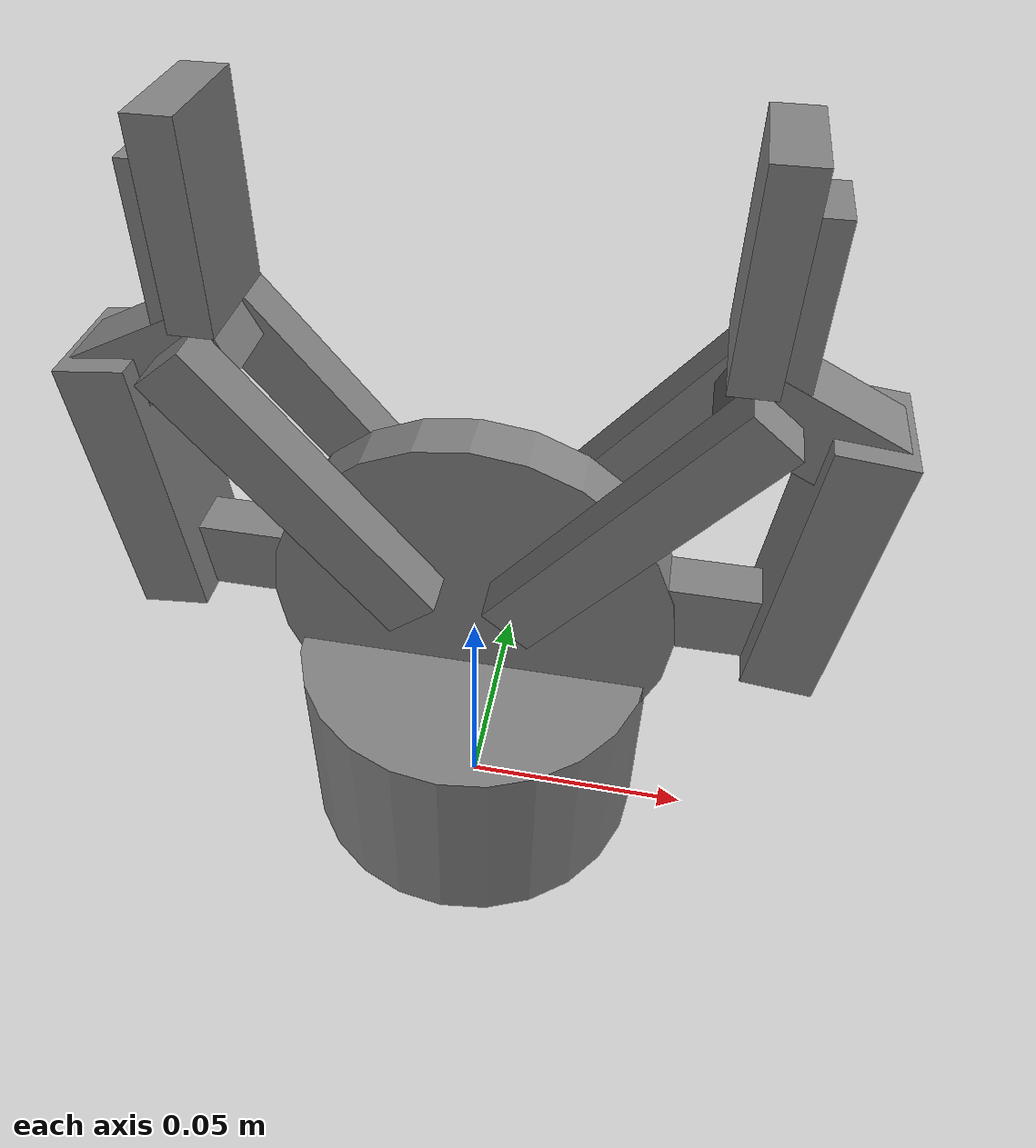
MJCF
<mujoco model="robotiq_2f85">
  <compiler angle="radian" meshdir="mjcf/robotiq_hand/meshes"/>

  <asset>
    <material name="metal" rgba="0.58 0.58 0.58 1"/>
    <material name="silicone" rgba="0.1882 0.1882 0.1882 1"/>
    <material name="gray" rgba="0.4627 0.4627 0.4627 1"/>
    <material name="black" rgba="0.149 0.149 0.149 1"/>

    <mesh class="2f85" file="base_mount.stl"/>
    <mesh class="2f85" file="base.stl"/>
    <mesh class="2f85" file="driver.stl"/>
    <mesh class="2f85" file="coupler.stl"/>
    <mesh class="2f85" file="follower.stl"/>
    <mesh class="2f85" file="pad.stl"/>
    <mesh class="2f85" file="silicone_pad.stl"/>
    <mesh class="2f85" file="spring_link.stl"/>
  </asset>

  <default>
    <default class="2f85">
      <mesh scale="0.001 0.001 0.001"/>
      <general biastype="affine"/>

      <joint axis="1 0 0"/>
      <default class="driver">
        <joint range="0 0.8" armature="0.005" damping="0.1" solimplimit="0.95 0.99 0.001" solreflimit="0.005 1"/>
      </default>
      <default class="follower">
        <joint range="-0.872664 0.872664" armature="0.001" pos="0 -0.018 0.0065" solimplimit="0.95 0.99 0.001" solreflimit="0.005 1"/>
      </default>
      <default class="spring_link">
        <joint range="-0.29670597283 0.8" armature="0.001" stiffness="0.05" springref="2.62" damping="0.00125"/>
      </default>
      <default class="coupler">
        <joint range="-1.57 0" armature="0.001" solimplimit="0.95 0.99 0.001" solreflimit="0.005 1"/>
      </default>

      <default class="visual">
        <geom type="mesh" contype="0" conaffinity="0" group="2"/>
      </default>
      <default class="collision">
        <geom type="mesh" group="3"/>
        <default class="pad_box1">
          <geom mass="0" type="box" pos="0 -0.0026 0.028125" size="0.011 0.004 0.009375" friction="0.7"
            solimp="0.95 0.99 0.001" solref="0.004 1" priority="1" rgba="0.55 0.55 0.55 1"/>
        </default>
        <default class="pad_box2">
          <geom mass="0" type="box" pos="0 -0.0026 0.009375" size="0.011 0.004 0.009375" friction="0.6"
            solimp="0.95 0.99 0.001" solref="0.004 1" priority="1" rgba="0.45 0.45 0.45 1"/>
        </default>
      </default>
    </default>
  </default>

  <worldbody>
    <body name="base_mount" pos="0 0 0.007" childclass="2f85">
      <geom type="cylinder" size="0.038 0.0225" pos="0.0 0.0 0.01521"/>
      <geom type="cylinder" size="0.042 0.005402" pos="0.0 0.0 0.05182" quat="0.70711 0.70711 0.0 0.0"/>
      <body name="base" pos="0 0 0.0038" quat="1 0 0 -1">
        <inertial mass="0.777441" pos="0 -2.70394e-05 0.0354675" quat="1 -0.00152849 0 0"
          diaginertia="0.000260285 0.000225381 0.000152708"/>
        <body name="right_driver" pos="0 0.0306011 0.054904">
          <inertial mass="0.00899563" pos="2.96931e-12 0.0177547 0.00107314" quat="0.681301 0.732003 0 0"
            diaginertia="1.72352e-06 1.60906e-06 3.22006e-07"/>
          <joint name="right_driver_joint" class="driver" range="0 0.8"/>
          <geom type="box" size="0.00506 0.02249 0.00747" pos="0 0.01463 0.0"/>
          <body name="right_coupler" pos="0 0.0315 -0.0041">
            <inertial mass="0.0140974" pos="0 0.00301209 0.0232175" quat="0.705636 -0.0455904 0.0455904 0.705636"
              diaginertia="4.16206e-06 3.52216e-06 8.88131e-07"/>
            <joint name="right_coupler_joint" class="coupler" range="-1.57 0"/>
            <geom type="box" size="0.01147 0.00703 0.02828" pos="0 0.00304 0.02346" quat="0.99865 -0.05201 0.0 0.0"/>
          </body>
        </body>
        <body name="right_spring_link" pos="0 0.0132 0.0609">
          <inertial mass="0.0221642" pos="-8.65005e-09 0.0181624 0.0212658" quat="0.663403 -0.244737 0.244737 0.663403"
            diaginertia="8.96853e-06 6.71733e-06 2.63931e-06"/>
          <joint name="right_spring_link_joint" class="spring_link" range="-0.29670597283 0.8"/>
          <geom type="box" size="0.00464 0.005865 0.033485" pos="-0.01266 0.01705 0.02163" euler="-0.683 0.0 0.0"/>
          <geom type="box" size="0.00464 0.005865 0.033485" pos="0.01206 0.01705 0.02163" euler="-0.683 0.0 0.0"/>
          <body name="right_follower" pos="0 0.055 0.0375">
            <inertial mass="0.0125222" pos="0 -0.011046 0.0124786" quat="1 0.1664 0 0"
              diaginertia="2.67415e-06 2.4559e-06 6.02031e-07"/>
            <joint name="right_follower_joint" class="follower" range="-0.872664 0.872664"/>
            <geom type="box" size="0.00693 0.015 0.00691" pos="0.0 -0.01021 0.00354" quat="0.9738 -0.22743 0.0 0.0"/>
            <geom type="box" size="0.00686 0.00497 0.01707" pos="0.0 -0.01697 0.02465"/>
            <body name="right_pad" pos="0 -0.0189 0.01352">
              <geom type="box" size="0.01156 0.0042 0.01852" pos="0.0 -0.00265 0.01862"/>
              <inertial mass="0.0035" pos="0 -0.0025 0.0185" quat="0.707107 0 0 0.707107"
                diaginertia="4.73958e-07 3.64583e-07 1.23958e-07"/>
              <body name="right_silicone_pad">
              </body>
            </body>
          </body>
        </body>
        <!-- Left-hand side 4-bar linkage -->
        <body name="left_driver" pos="0 -0.0306011 0.054904" quat="0 0 0 1">
          <inertial mass="0.00899563" pos="0 0.0177547 0.00107314" quat="0.681301 0.732003 0 0"
            diaginertia="1.72352e-06 1.60906e-06 3.22006e-07"/>
          <joint name="left_driver_joint" class="driver" range="0 0.8"/>
          <geom type="box" size="0.00506 0.02249 0.00747" pos="0 0.01463 0.0"/>
          <body name="left_coupler" pos="0 0.0315 -0.0041">
            <inertial mass="0.0140974" pos="0 0.00301209 0.0232175" quat="0.705636 -0.0455904 0.0455904 0.705636"
              diaginertia="4.16206e-06 3.52216e-06 8.88131e-07"/>
            <joint name="left_coupler_joint" class="coupler" range="-1.57 0"/>
            <geom type="box" size="0.01147 0.00703 0.02828" pos="0 0.00304 0.02346" quat="0.99865 -0.05201 0.0 0.0"/>
          </body>
        </body>
        <body name="left_spring_link" pos="0 -0.0132 0.0609" quat="0 0 0 1">
          <inertial mass="0.0221642" pos="-8.65005e-09 0.0181624 0.0212658" quat="0.663403 -0.244737 0.244737 0.663403"
            diaginertia="8.96853e-06 6.71733e-06 2.63931e-06"/>
          <joint name="left_spring_link_joint" class="spring_link" range="-0.29670597283 0.8"/>
          <geom type="box" size="0.00464 0.005865 0.033485" pos="-0.01266 0.01705 0.02163" euler="-0.683 0.0 0.0"/>
          <geom type="box" size="0.00464 0.005865 0.033485" pos="0.01206 0.01705 0.02163" euler="-0.683 0.0 0.0"/>
          <body name="left_follower" pos="0 0.055 0.0375">
            <inertial mass="0.0125222" pos="0 -0.011046 0.0124786" quat="1 0.1664 0 0"
              diaginertia="2.67415e-06 2.4559e-06 6.02031e-07"/>
            <joint name="left_follower_joint" class="follower" range="-0.872664 0.872664"/>
            <geom type="box" size="0.00693 0.015 0.00691" pos="0.0 -0.01021 0.00354" quat="0.9738 -0.22743 0.0 0.0"/>
            <geom type="box" size="0.00686 0.00497 0.01707" pos="0.0 -0.01697 0.02465"/>
            <body name="left_pad" pos="0 -0.0189 0.01352">
              <geom type="box" size="0.01156 0.0042 0.01852" pos="0.0 -0.00265 0.01862"/>
              <inertial mass="0.0035" pos="0 -0.0025 0.0185" quat="1 0 0 1"
                diaginertia="4.73958e-07 3.64583e-07 1.23958e-07"/>
              <body name="left_silicone_pad">
              </body>
            </body>
          </body>
        </body>
      </body>
    </body>
  </worldbody>

  <contact>
    <exclude body1="base" body2="left_driver"/>
    <exclude body1="base" body2="right_driver"/>
    <exclude body1="base" body2="left_spring_link"/>
    <exclude body1="base" body2="right_spring_link"/>
    <exclude body1="right_coupler" body2="right_follower"/>
    <exclude body1="left_coupler" body2="left_follower"/>
  </contact>

  <tendon>
    <fixed name="split">
      <joint joint="right_driver_joint" coef="0.5"/>
      <joint joint="left_driver_joint" coef="0.5"/>
    </fixed>
  </tendon>

  <equality>
    <connect anchor="0 0 0" body1="right_follower" body2="right_coupler" solimp="0.95 0.99 0.001" solref="0.005 1"/>
    <connect anchor="0 0 0" body1="left_follower" body2="left_coupler" solimp="0.95 0.99 0.001" solref="0.005 1"/>
    <joint joint1="right_driver_joint" joint2="left_driver_joint" polycoef="0 1 0 0 0" solimp="0.95 0.99 0.001"
      solref="0.005 1"/>
  </equality>

  <actuator>
    <general class="2f85" name="fingers_actuator" tendon="split" forcerange="-5 5" ctrlrange="0 255"
      gainprm="0.3137255 0 0" biasprm="0 -100 -10"/>
  </actuator>
</mujoco>
